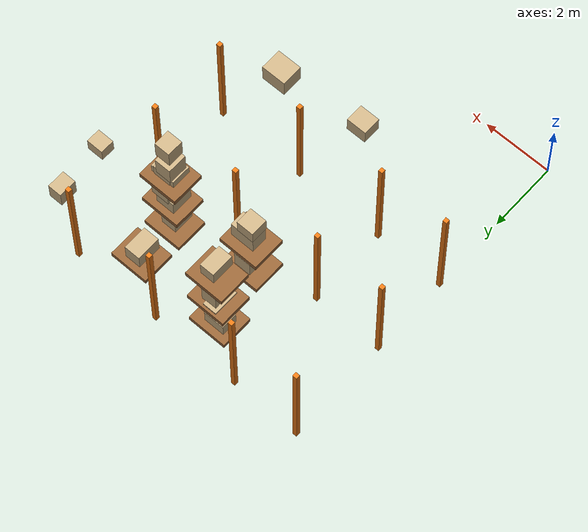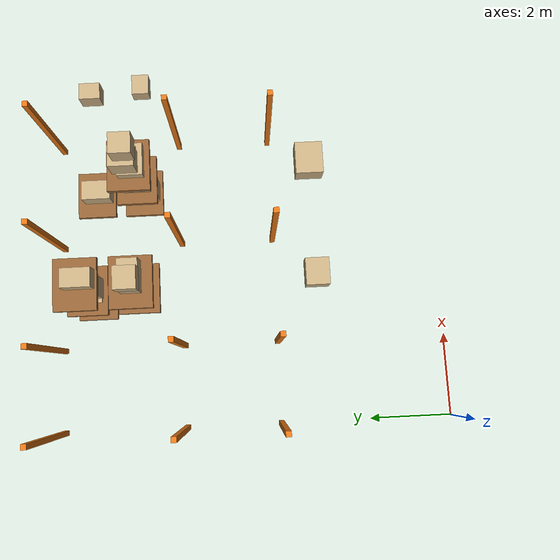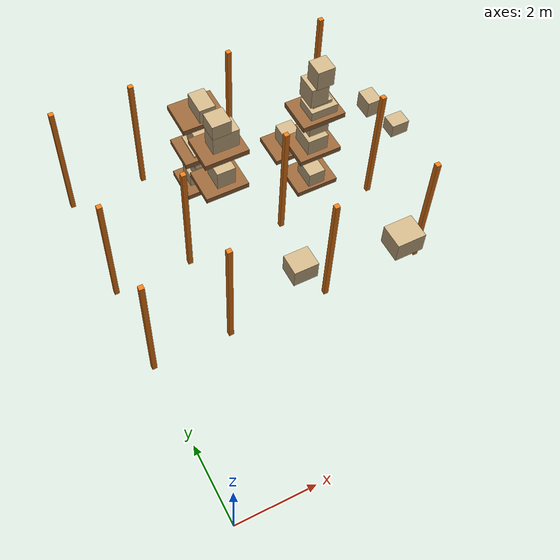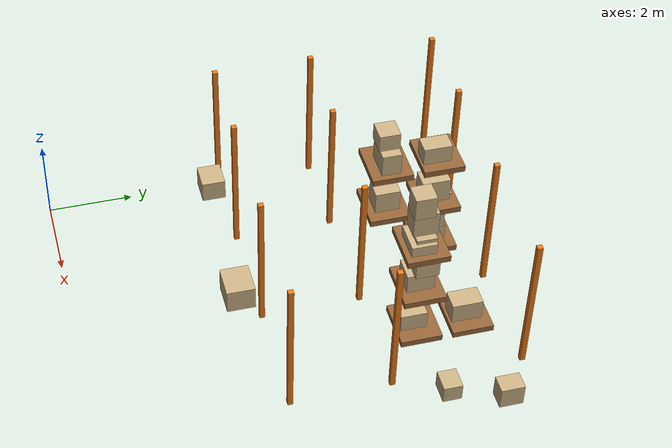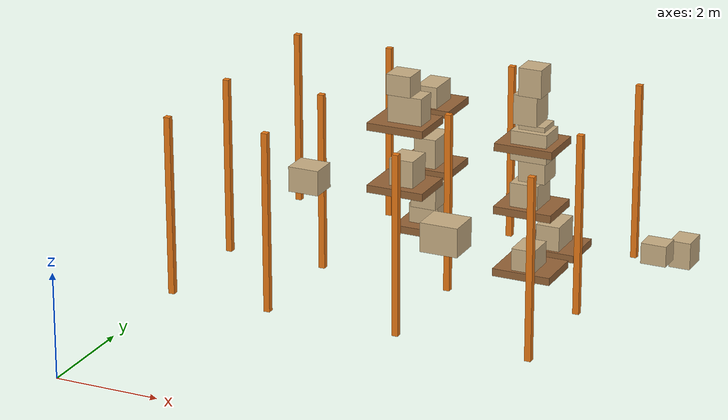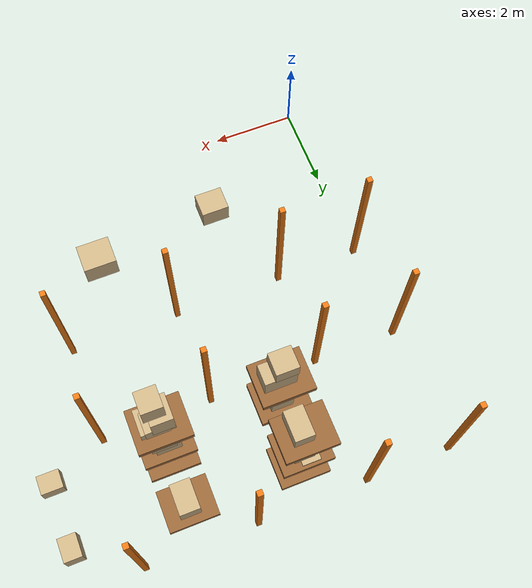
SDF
<sdf version="1.7">
 <world name="default">
  <model name="warehouse_racks">
   <static>1</static>
   <link name="r20_u6_1">
    <pose>0 4.2 1.75 0 0 0</pose>
    <collision name="c"><geometry><box><size>0.12 0.12 3.5</size></box></geometry></collision>
    <visual name="v">
     <geometry><box><size>0.12 0.12 3.5</size></box></geometry>
     <material>
      <ambient>0.910 0.471 0.086 1</ambient>
      <diffuse>0.910 0.471 0.086 1</diffuse>
      <specular>0.1 0.1 0.1 1</specular>
     </material>
    </visual>
   </link>
   <link name="r21_u0_1">
    <pose>2 4.2 1.75 0 0 0</pose>
    <collision name="c"><geometry><box><size>0.12 0.12 3.5</size></box></geometry></collision>
    <visual name="v">
     <geometry><box><size>0.12 0.12 3.5</size></box></geometry>
     <material>
      <ambient>0.910 0.471 0.086 1</ambient>
      <diffuse>0.910 0.471 0.086 1</diffuse>
      <specular>0.1 0.1 0.1 1</specular>
     </material>
    </visual>
   </link>
   <link name="r21_u1_1">
    <pose>4.6 4.2 1.75 0 0 0</pose>
    <collision name="c"><geometry><box><size>0.12 0.12 3.5</size></box></geometry></collision>
    <visual name="v">
     <geometry><box><size>0.12 0.12 3.5</size></box></geometry>
     <material>
      <ambient>0.910 0.471 0.086 1</ambient>
      <diffuse>0.910 0.471 0.086 1</diffuse>
      <specular>0.1 0.1 0.1 1</specular>
     </material>
    </visual>
   </link>
   <link name="r21_u2_1">
    <pose>7.2 4.2 1.75 0 0 0</pose>
    <collision name="c"><geometry><box><size>0.12 0.12 3.5</size></box></geometry></collision>
    <visual name="v">
     <geometry><box><size>0.12 0.12 3.5</size></box></geometry>
     <material>
      <ambient>0.910 0.471 0.086 1</ambient>
      <diffuse>0.910 0.471 0.086 1</diffuse>
      <specular>0.1 0.1 0.1 1</specular>
     </material>
    </visual>
   </link>
   <link name="r30_u6_0">
    <pose>0 6.5 1.75 0 0 0</pose>
    <collision name="c"><geometry><box><size>0.12 0.12 3.5</size></box></geometry></collision>
    <visual name="v">
     <geometry><box><size>0.12 0.12 3.5</size></box></geometry>
     <material>
      <ambient>0.910 0.471 0.086 1</ambient>
      <diffuse>0.910 0.471 0.086 1</diffuse>
      <specular>0.1 0.1 0.1 1</specular>
     </material>
    </visual>
   </link>
   <link name="r30_u6_1">
    <pose>0 9.5 1.75 0 0 0</pose>
    <collision name="c"><geometry><box><size>0.12 0.12 3.5</size></box></geometry></collision>
    <visual name="v">
     <geometry><box><size>0.12 0.12 3.5</size></box></geometry>
     <material>
      <ambient>0.910 0.471 0.086 1</ambient>
      <diffuse>0.910 0.471 0.086 1</diffuse>
      <specular>0.1 0.1 0.1 1</specular>
     </material>
    </visual>
   </link>
   <link name="r31_u0_0">
    <pose>2 6.5 1.75 0 0 0</pose>
    <collision name="c"><geometry><box><size>0.12 0.12 3.5</size></box></geometry></collision>
    <visual name="v">
     <geometry><box><size>0.12 0.12 3.5</size></box></geometry>
     <material>
      <ambient>0.910 0.471 0.086 1</ambient>
      <diffuse>0.910 0.471 0.086 1</diffuse>
      <specular>0.1 0.1 0.1 1</specular>
     </material>
    </visual>
   </link>
   <link name="r31_u0_1">
    <pose>2 9.5 1.75 0 0 0</pose>
    <collision name="c"><geometry><box><size>0.12 0.12 3.5</size></box></geometry></collision>
    <visual name="v">
     <geometry><box><size>0.12 0.12 3.5</size></box></geometry>
     <material>
      <ambient>0.910 0.471 0.086 1</ambient>
      <diffuse>0.910 0.471 0.086 1</diffuse>
      <specular>0.1 0.1 0.1 1</specular>
     </material>
    </visual>
   </link>
   <link name="r31_u1_0">
    <pose>4.6 6.5 1.75 0 0 0</pose>
    <collision name="c"><geometry><box><size>0.12 0.12 3.5</size></box></geometry></collision>
    <visual name="v">
     <geometry><box><size>0.12 0.12 3.5</size></box></geometry>
     <material>
      <ambient>0.910 0.471 0.086 1</ambient>
      <diffuse>0.910 0.471 0.086 1</diffuse>
      <specular>0.1 0.1 0.1 1</specular>
     </material>
    </visual>
   </link>
   <link name="r31_u1_1">
    <pose>4.6 9.5 1.75 0 0 0</pose>
    <collision name="c"><geometry><box><size>0.12 0.12 3.5</size></box></geometry></collision>
    <visual name="v">
     <geometry><box><size>0.12 0.12 3.5</size></box></geometry>
     <material>
      <ambient>0.910 0.471 0.086 1</ambient>
      <diffuse>0.910 0.471 0.086 1</diffuse>
      <specular>0.1 0.1 0.1 1</specular>
     </material>
    </visual>
   </link>
   <link name="r31_u2_0">
    <pose>7.2 6.5 1.75 0 0 0</pose>
    <collision name="c"><geometry><box><size>0.12 0.12 3.5</size></box></geometry></collision>
    <visual name="v">
     <geometry><box><size>0.12 0.12 3.5</size></box></geometry>
     <material>
      <ambient>0.910 0.471 0.086 1</ambient>
      <diffuse>0.910 0.471 0.086 1</diffuse>
      <specular>0.1 0.1 0.1 1</specular>
     </material>
    </visual>
   </link>
   <link name="r31_u2_1">
    <pose>7.2 9.5 1.75 0 0 0</pose>
    <collision name="c"><geometry><box><size>0.12 0.12 3.5</size></box></geometry></collision>
    <visual name="v">
     <geometry><box><size>0.12 0.12 3.5</size></box></geometry>
     <material>
      <ambient>0.910 0.471 0.086 1</ambient>
      <diffuse>0.910 0.471 0.086 1</diffuse>
      <specular>0.1 0.1 0.1 1</specular>
     </material>
    </visual>
   </link>
  </model>
  <model name="warehouse_loads">
   <static>1</static>
   <link name="r21L1_1_1_c1">
    <pose>5.93369 3.37878 2.49868 0 0 0</pose>
    <collision name="c"><geometry><box><size>0.711897 0.612929 0.54532</size></box></geometry></collision>
    <visual name="v">
     <geometry><box><size>0.711897 0.612929 0.54532</size></box></geometry>
     <material>
      <ambient>0.792 0.690 0.518 1</ambient>
      <diffuse>0.792 0.690 0.518 1</diffuse>
      <specular>0.1 0.1 0.1 1</specular>
     </material>
    </visual>
   </link>
   <link name="r21L2_0_1_c0">
    <pose>3.28516 3.39999 3.13322 0 0 0</pose>
    <collision name="c"><geometry><box><size>0.574162 0.503886 0.46644</size></box></geometry></collision>
    <visual name="v">
     <geometry><box><size>0.574162 0.503886 0.46644</size></box></geometry>
     <material>
      <ambient>0.792 0.690 0.518 1</ambient>
      <diffuse>0.792 0.690 0.518 1</diffuse>
      <specular>0.1 0.1 0.1 1</specular>
     </material>
    </visual>
   </link>
   <link name="r31L0_0_1_p">
    <pose>3.3 8.6 0.325 0 0 0</pose>
    <collision name="c"><geometry><box><size>1.15 0.95 0.15</size></box></geometry></collision>
    <visual name="v">
     <geometry><box><size>1.15 0.95 0.15</size></box></geometry>
     <material>
      <ambient>0.588 0.392 0.216 1</ambient>
      <diffuse>0.588 0.392 0.216 1</diffuse>
      <specular>0.1 0.1 0.1 1</specular>
     </material>
    </visual>
   </link>
   <link name="r31L0_0_1_c0">
    <pose>3.23614 8.64021 0.599039 0 0 0</pose>
    <collision name="c"><geometry><box><size>0.606265 0.466203 0.398079</size></box></geometry></collision>
    <visual name="v">
     <geometry><box><size>0.606265 0.466203 0.398079</size></box></geometry>
     <material>
      <ambient>0.792 0.690 0.518 1</ambient>
      <diffuse>0.792 0.690 0.518 1</diffuse>
      <specular>0.1 0.1 0.1 1</specular>
     </material>
    </visual>
   </link>
   <link name="r31L0_0_1_c1">
    <pose>3.30344 8.5298 1.02339 0 0 0</pose>
    <collision name="c"><geometry><box><size>0.526989 0.597551 0.450623</size></box></geometry></collision>
    <visual name="v">
     <geometry><box><size>0.526989 0.597551 0.450623</size></box></geometry>
     <material>
      <ambient>0.792 0.690 0.518 1</ambient>
      <diffuse>0.792 0.690 0.518 1</diffuse>
      <specular>0.1 0.1 0.1 1</specular>
     </material>
    </visual>
   </link>
   <link name="r31L0_0_1_c2">
    <pose>3.22122 8.62655 1.47046 0 0 0</pose>
    <collision name="c"><geometry><box><size>0.415608 0.749 0.44351</size></box></geometry></collision>
    <visual name="v">
     <geometry><box><size>0.415608 0.749 0.44351</size></box></geometry>
     <material>
      <ambient>0.792 0.690 0.518 1</ambient>
      <diffuse>0.792 0.690 0.518 1</diffuse>
      <specular>0.1 0.1 0.1 1</specular>
     </material>
    </visual>
   </link>
   <link name="r31L0_1_0_p">
    <pose>5.9 7.4 0.325 0 0 0</pose>
    <collision name="c"><geometry><box><size>1.15 0.95 0.15</size></box></geometry></collision>
    <visual name="v">
     <geometry><box><size>1.15 0.95 0.15</size></box></geometry>
     <material>
      <ambient>0.588 0.392 0.216 1</ambient>
      <diffuse>0.588 0.392 0.216 1</diffuse>
      <specular>0.1 0.1 0.1 1</specular>
     </material>
    </visual>
   </link>
   <link name="r31L0_1_0_c0">
    <pose>5.90389 7.30411 0.618115 0 0 0</pose>
    <collision name="c"><geometry><box><size>0.454654 0.609024 0.43623</size></box></geometry></collision>
    <visual name="v">
     <geometry><box><size>0.454654 0.609024 0.43623</size></box></geometry>
     <material>
      <ambient>0.792 0.690 0.518 1</ambient>
      <diffuse>0.792 0.690 0.518 1</diffuse>
      <specular>0.1 0.1 0.1 1</specular>
     </material>
    </visual>
   </link>
   <link name="r31L0_1_1_p">
    <pose>5.9 8.6 0.325 0 0 0</pose>
    <collision name="c"><geometry><box><size>1.15 0.95 0.15</size></box></geometry></collision>
    <visual name="v">
     <geometry><box><size>1.15 0.95 0.15</size></box></geometry>
     <material>
      <ambient>0.588 0.392 0.216 1</ambient>
      <diffuse>0.588 0.392 0.216 1</diffuse>
      <specular>0.1 0.1 0.1 1</specular>
     </material>
    </visual>
   </link>
   <link name="r31L0_1_1_c0">
    <pose>5.91734 8.54272 0.645684 0 0 0</pose>
    <collision name="c"><geometry><box><size>0.471625 0.70477 0.491369</size></box></geometry></collision>
    <visual name="v">
     <geometry><box><size>0.471625 0.70477 0.491369</size></box></geometry>
     <material>
      <ambient>0.792 0.690 0.518 1</ambient>
      <diffuse>0.792 0.690 0.518 1</diffuse>
      <specular>0.1 0.1 0.1 1</specular>
     </material>
    </visual>
   </link>
   <link name="r31L0_2_0_c1">
    <pose>8.43615 7.31673 1.14194 0 0 0</pose>
    <collision name="c"><geometry><box><size>0.488898 0.413255 0.400247</size></box></geometry></collision>
    <visual name="v">
     <geometry><box><size>0.488898 0.413255 0.400247</size></box></geometry>
     <material>
      <ambient>0.792 0.690 0.518 1</ambient>
      <diffuse>0.792 0.690 0.518 1</diffuse>
      <specular>0.1 0.1 0.1 1</specular>
     </material>
    </visual>
   </link>
   <link name="r31L0_2_1_c0">
    <pose>8.49737 8.66912 0.663196 0 0 0</pose>
    <collision name="c"><geometry><box><size>0.412184 0.529372 0.526393</size></box></geometry></collision>
    <visual name="v">
     <geometry><box><size>0.412184 0.529372 0.526393</size></box></geometry>
     <material>
      <ambient>0.792 0.690 0.518 1</ambient>
      <diffuse>0.792 0.690 0.518 1</diffuse>
      <specular>0.1 0.1 0.1 1</specular>
     </material>
    </visual>
   </link>
   <link name="r31L1_0_0_p">
    <pose>3.3 7.4 1.575 0 0 0</pose>
    <collision name="c"><geometry><box><size>1.15 0.95 0.15</size></box></geometry></collision>
    <visual name="v">
     <geometry><box><size>1.15 0.95 0.15</size></box></geometry>
     <material>
      <ambient>0.588 0.392 0.216 1</ambient>
      <diffuse>0.588 0.392 0.216 1</diffuse>
      <specular>0.1 0.1 0.1 1</specular>
     </material>
    </visual>
   </link>
   <link name="r31L1_0_0_c0">
    <pose>3.35233 7.39669 1.91745 0 0 0</pose>
    <collision name="c"><geometry><box><size>0.490266 0.579667 0.534893</size></box></geometry></collision>
    <visual name="v">
     <geometry><box><size>0.490266 0.579667 0.534893</size></box></geometry>
     <material>
      <ambient>0.792 0.690 0.518 1</ambient>
      <diffuse>0.792 0.690 0.518 1</diffuse>
      <specular>0.1 0.1 0.1 1</specular>
     </material>
    </visual>
   </link>
   <link name="r31L1_0_1_p">
    <pose>3.3 8.6 1.575 0 0 0</pose>
    <collision name="c"><geometry><box><size>1.15 0.95 0.15</size></box></geometry></collision>
    <visual name="v">
     <geometry><box><size>1.15 0.95 0.15</size></box></geometry>
     <material>
      <ambient>0.588 0.392 0.216 1</ambient>
      <diffuse>0.588 0.392 0.216 1</diffuse>
      <specular>0.1 0.1 0.1 1</specular>
     </material>
    </visual>
   </link>
   <link name="r31L1_0_1_c0">
    <pose>3.33538 8.55976 1.94242 0 0 0</pose>
    <collision name="c"><geometry><box><size>0.450679 0.664233 0.584845</size></box></geometry></collision>
    <visual name="v">
     <geometry><box><size>0.450679 0.664233 0.584845</size></box></geometry>
     <material>
      <ambient>0.792 0.690 0.518 1</ambient>
      <diffuse>0.792 0.690 0.518 1</diffuse>
      <specular>0.1 0.1 0.1 1</specular>
     </material>
    </visual>
   </link>
   <link name="r31L1_1_0_p">
    <pose>5.9 7.4 1.575 0 0 0</pose>
    <collision name="c"><geometry><box><size>1.15 0.95 0.15</size></box></geometry></collision>
    <visual name="v">
     <geometry><box><size>1.15 0.95 0.15</size></box></geometry>
     <material>
      <ambient>0.588 0.392 0.216 1</ambient>
      <diffuse>0.588 0.392 0.216 1</diffuse>
      <specular>0.1 0.1 0.1 1</specular>
     </material>
    </visual>
   </link>
   <link name="r31L1_1_0_c0">
    <pose>5.87434 7.37801 1.88384 0 0 0</pose>
    <collision name="c"><geometry><box><size>0.554448 0.62838 0.467681</size></box></geometry></collision>
    <visual name="v">
     <geometry><box><size>0.554448 0.62838 0.467681</size></box></geometry>
     <material>
      <ambient>0.792 0.690 0.518 1</ambient>
      <diffuse>0.792 0.690 0.518 1</diffuse>
      <specular>0.1 0.1 0.1 1</specular>
     </material>
    </visual>
   </link>
   <link name="r31L1_1_0_c1">
    <pose>5.96151 7.48286 2.34785 0 0 0</pose>
    <collision name="c"><geometry><box><size>0.531244 0.532876 0.460346</size></box></geometry></collision>
    <visual name="v">
     <geometry><box><size>0.531244 0.532876 0.460346</size></box></geometry>
     <material>
      <ambient>0.792 0.690 0.518 1</ambient>
      <diffuse>0.792 0.690 0.518 1</diffuse>
      <specular>0.1 0.1 0.1 1</specular>
     </material>
    </visual>
   </link>
   <link name="r31L1_1_0_c2">
    <pose>5.95977 7.33139 2.8671 0 0 0</pose>
    <collision name="c"><geometry><box><size>0.712259 0.563764 0.578147</size></box></geometry></collision>
    <visual name="v">
     <geometry><box><size>0.712259 0.563764 0.578147</size></box></geometry>
     <material>
      <ambient>0.792 0.690 0.518 1</ambient>
      <diffuse>0.792 0.690 0.518 1</diffuse>
      <specular>0.1 0.1 0.1 1</specular>
     </material>
    </visual>
   </link>
   <link name="r31L2_0_0_p">
    <pose>3.3 7.4 2.825 0 0 0</pose>
    <collision name="c"><geometry><box><size>1.15 0.95 0.15</size></box></geometry></collision>
    <visual name="v">
     <geometry><box><size>1.15 0.95 0.15</size></box></geometry>
     <material>
      <ambient>0.588 0.392 0.216 1</ambient>
      <diffuse>0.588 0.392 0.216 1</diffuse>
      <specular>0.1 0.1 0.1 1</specular>
     </material>
    </visual>
   </link>
   <link name="r31L2_0_0_c0">
    <pose>3.39414 7.38641 3.16936 0 0 0</pose>
    <collision name="c"><geometry><box><size>0.692349 0.441716 0.538713</size></box></geometry></collision>
    <visual name="v">
     <geometry><box><size>0.692349 0.441716 0.538713</size></box></geometry>
     <material>
      <ambient>0.792 0.690 0.518 1</ambient>
      <diffuse>0.792 0.690 0.518 1</diffuse>
      <specular>0.1 0.1 0.1 1</specular>
     </material>
    </visual>
   </link>
   <link name="r31L2_0_0_c1">
    <pose>3.27803 7.38313 3.64348 0 0 0</pose>
    <collision name="c"><geometry><box><size>0.491533 0.483536 0.409537</size></box></geometry></collision>
    <visual name="v">
     <geometry><box><size>0.491533 0.483536 0.409537</size></box></geometry>
     <material>
      <ambient>0.792 0.690 0.518 1</ambient>
      <diffuse>0.792 0.690 0.518 1</diffuse>
      <specular>0.1 0.1 0.1 1</specular>
     </material>
    </visual>
   </link>
   <link name="r31L2_0_1_p">
    <pose>3.3 8.6 2.825 0 0 0</pose>
    <collision name="c"><geometry><box><size>1.15 0.95 0.15</size></box></geometry></collision>
    <visual name="v">
     <geometry><box><size>1.15 0.95 0.15</size></box></geometry>
     <material>
      <ambient>0.588 0.392 0.216 1</ambient>
      <diffuse>0.588 0.392 0.216 1</diffuse>
      <specular>0.1 0.1 0.1 1</specular>
     </material>
    </visual>
   </link>
   <link name="r31L2_0_1_c0">
    <pose>3.39573 8.50321 3.11169 0 0 0</pose>
    <collision name="c"><geometry><box><size>0.420119 0.654266 0.423381</size></box></geometry></collision>
    <visual name="v">
     <geometry><box><size>0.420119 0.654266 0.423381</size></box></geometry>
     <material>
      <ambient>0.792 0.690 0.518 1</ambient>
      <diffuse>0.792 0.690 0.518 1</diffuse>
      <specular>0.1 0.1 0.1 1</specular>
     </material>
    </visual>
   </link>
   <link name="r31L2_1_0_p">
    <pose>5.9 7.4 2.825 0 0 0</pose>
    <collision name="c"><geometry><box><size>1.15 0.95 0.15</size></box></geometry></collision>
    <visual name="v">
     <geometry><box><size>1.15 0.95 0.15</size></box></geometry>
     <material>
      <ambient>0.588 0.392 0.216 1</ambient>
      <diffuse>0.588 0.392 0.216 1</diffuse>
      <specular>0.1 0.1 0.1 1</specular>
     </material>
    </visual>
   </link>
   <link name="r31L2_1_0_c0">
    <pose>5.96645 7.40532 3.07524 0 0 0</pose>
    <collision name="c"><geometry><box><size>0.519317 0.44905 0.350481</size></box></geometry></collision>
    <visual name="v">
     <geometry><box><size>0.519317 0.44905 0.350481</size></box></geometry>
     <material>
      <ambient>0.792 0.690 0.518 1</ambient>
      <diffuse>0.792 0.690 0.518 1</diffuse>
      <specular>0.1 0.1 0.1 1</specular>
     </material>
    </visual>
   </link>
   <link name="r31L2_1_0_c1">
    <pose>5.84365 7.41427 3.53948 0 0 0</pose>
    <collision name="c"><geometry><box><size>0.465037 0.552337 0.577995</size></box></geometry></collision>
    <visual name="v">
     <geometry><box><size>0.465037 0.552337 0.577995</size></box></geometry>
     <material>
      <ambient>0.792 0.690 0.518 1</ambient>
      <diffuse>0.792 0.690 0.518 1</diffuse>
      <specular>0.1 0.1 0.1 1</specular>
     </material>
    </visual>
   </link>
   <link name="r31L2_1_0_c2">
    <pose>5.94232 7.33934 4.09978 0 0 0</pose>
    <collision name="c"><geometry><box><size>0.448326 0.463045 0.542611</size></box></geometry></collision>
    <visual name="v">
     <geometry><box><size>0.448326 0.463045 0.542611</size></box></geometry>
     <material>
      <ambient>0.792 0.690 0.518 1</ambient>
      <diffuse>0.792 0.690 0.518 1</diffuse>
      <specular>0.1 0.1 0.1 1</specular>
     </material>
    </visual>
   </link>
  </model>
 </world>
</sdf>
